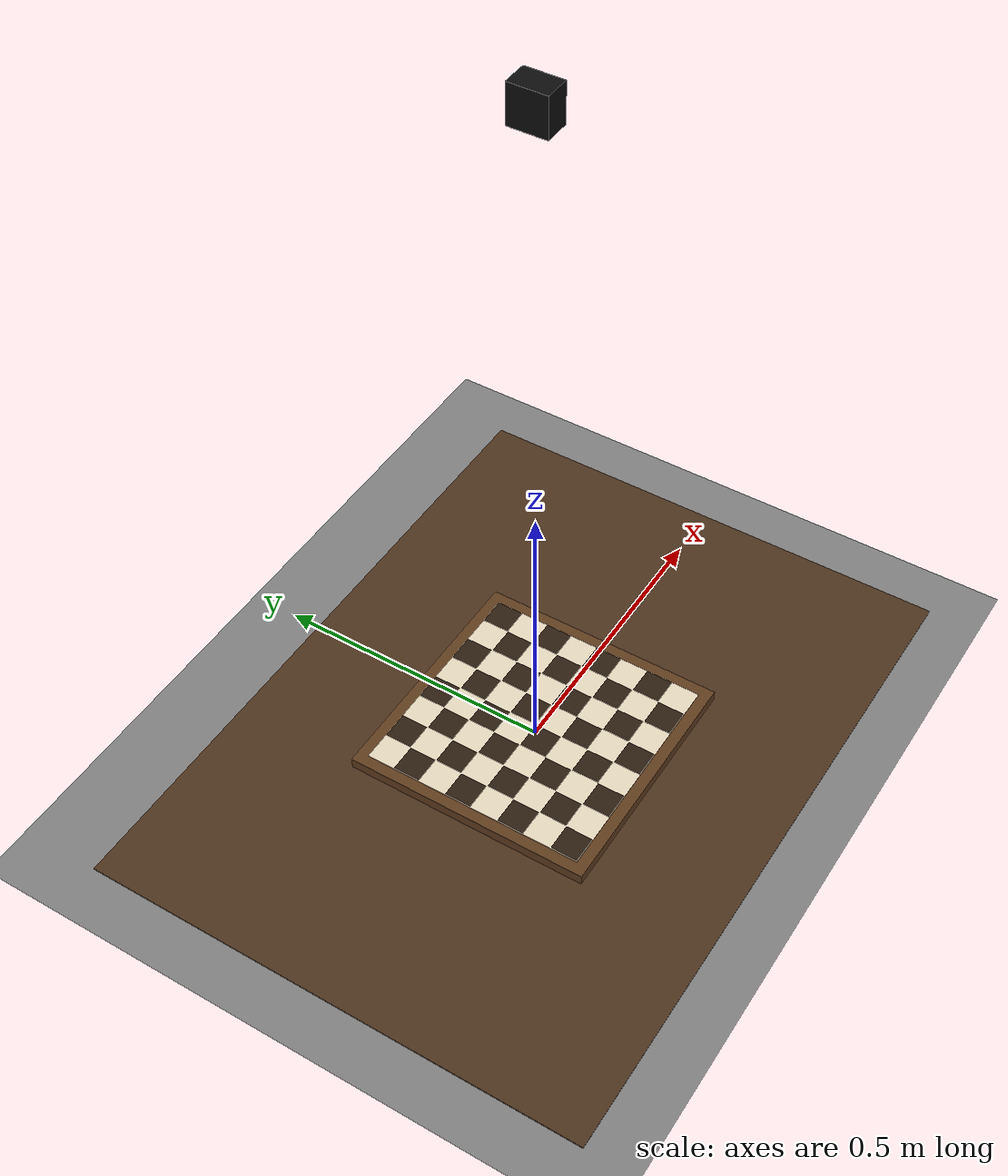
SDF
<?xml version="1.0" ?>
<sdf version="1.9">
  <world name="chess_world">

    <plugin filename="gz-sim-physics-system"          name="gz::sim::systems::Physics"/>
    <plugin filename="gz-sim-user-commands-system"    name="gz::sim::systems::UserCommands"/>
    <plugin filename="gz-sim-scene-broadcaster-system" name="gz::sim::systems::SceneBroadcaster"/>
    <plugin filename="gz-sim-sensors-system"          name="gz::sim::systems::Sensors">
      <render_engine>ogre2</render_engine>
    </plugin>
    <plugin filename="gz-sim-detachable-joint-system" name="gz::sim::systems::DetachableJoint">
    </plugin>

    <gravity>0 0 -9.81</gravity>

    <scene>
      <ambient>0.5 0.5 0.5 1</ambient>
      <background>0.7 0.7 0.7 1</background>
      <shadows>true</shadows>
    </scene>

    <light name="sun" type="directional">
      <pose>0 0 10 0 0 0</pose>
      <diffuse>0.9 0.9 0.9 1</diffuse>
      <specular>0.2 0.2 0.2 1</specular>
      <direction>-0.3 0.2 -0.9</direction>
      <cast_shadows>true</cast_shadows>
    </light>

    <model name="ground_plane">
      <static>true</static>
      <link name="link">
        <collision name="collision">
          <geometry><plane><normal>0 0 1</normal><size>10 10</size></plane></geometry>
        </collision>
        <visual name="visual">
          <geometry><plane><normal>0 0 1</normal><size>10 10</size></plane></geometry>
          <material>
            <ambient>0.3 0.3 0.3 1</ambient>
            <diffuse>0.5 0.5 0.5 1</diffuse>
          </material>
        </visual>
      </link>
    </model>

    <!-- Table: 1.0 m x 0.8 m x 0.02 m surface at z=0 (level with robot bases). -->
    <model name="chess_table">
      <static>true</static>
      <pose>0 0 -0.01 0 0 0</pose>
      <link name="surface">
        <collision name="col">
          <geometry><box><size>1.2 0.9 0.02</size></box></geometry>
        </collision>
        <visual name="vis">
          <geometry><box><size>1.2 0.9 0.02</size></box></geometry>
          <material>
            <ambient>0.20 0.13 0.08 1</ambient>
            <diffuse>0.30 0.20 0.12 1</diffuse>
          </material>
        </visual>
      </link>
    </model>

    <model name="chess_board">
      <static>true</static>
      <pose>0 0 0 0 0 0</pose>
      <link name="board">
        <!-- Wooden surround -->
        <visual name="border">
          <pose>0 0 0.01 0 0 0</pose>
          <geometry><box><size>0.44 0.44 0.02</size></box></geometry>
          <material>
            <ambient>0.28 0.17 0.08 1</ambient>
            <diffuse>0.38 0.24 0.12 1</diffuse>
          </material>
        </visual>
        <!-- Light-square background (full playing area) -->
        <visual name="light_bg">
          <pose>0 0 0.0205 0 0 0</pose>
          <geometry><box><size>0.400 0.400 0.001</size></box></geometry>
          <material>
            <ambient>0.90 0.85 0.75 1</ambient>
            <diffuse>0.90 0.85 0.75 1</diffuse>
          </material>
        </visual>
        <!-- 32 dark tiles: (i+j)%2==0, i/j in 0..7, pos=(i-3.5)*0.05 -->
        <visual name="d00"><pose>-0.175 -0.175 0.0215 0 0 0</pose><geometry><box><size>0.048 0.048 0.001</size></box></geometry><material><ambient>0.18 0.12 0.07 1</ambient><diffuse>0.18 0.12 0.07 1</diffuse></material></visual>
        <visual name="d02"><pose>-0.175 -0.075 0.0215 0 0 0</pose><geometry><box><size>0.048 0.048 0.001</size></box></geometry><material><ambient>0.18 0.12 0.07 1</ambient><diffuse>0.18 0.12 0.07 1</diffuse></material></visual>
        <visual name="d04"><pose>-0.175  0.025 0.0215 0 0 0</pose><geometry><box><size>0.048 0.048 0.001</size></box></geometry><material><ambient>0.18 0.12 0.07 1</ambient><diffuse>0.18 0.12 0.07 1</diffuse></material></visual>
        <visual name="d06"><pose>-0.175  0.125 0.0215 0 0 0</pose><geometry><box><size>0.048 0.048 0.001</size></box></geometry><material><ambient>0.18 0.12 0.07 1</ambient><diffuse>0.18 0.12 0.07 1</diffuse></material></visual>
        <visual name="d11"><pose>-0.125 -0.125 0.0215 0 0 0</pose><geometry><box><size>0.048 0.048 0.001</size></box></geometry><material><ambient>0.18 0.12 0.07 1</ambient><diffuse>0.18 0.12 0.07 1</diffuse></material></visual>
        <visual name="d13"><pose>-0.125 -0.025 0.0215 0 0 0</pose><geometry><box><size>0.048 0.048 0.001</size></box></geometry><material><ambient>0.18 0.12 0.07 1</ambient><diffuse>0.18 0.12 0.07 1</diffuse></material></visual>
        <visual name="d15"><pose>-0.125  0.075 0.0215 0 0 0</pose><geometry><box><size>0.048 0.048 0.001</size></box></geometry><material><ambient>0.18 0.12 0.07 1</ambient><diffuse>0.18 0.12 0.07 1</diffuse></material></visual>
        <visual name="d17"><pose>-0.125  0.175 0.0215 0 0 0</pose><geometry><box><size>0.048 0.048 0.001</size></box></geometry><material><ambient>0.18 0.12 0.07 1</ambient><diffuse>0.18 0.12 0.07 1</diffuse></material></visual>
        <visual name="d20"><pose>-0.075 -0.175 0.0215 0 0 0</pose><geometry><box><size>0.048 0.048 0.001</size></box></geometry><material><ambient>0.18 0.12 0.07 1</ambient><diffuse>0.18 0.12 0.07 1</diffuse></material></visual>
        <visual name="d22"><pose>-0.075 -0.075 0.0215 0 0 0</pose><geometry><box><size>0.048 0.048 0.001</size></box></geometry><material><ambient>0.18 0.12 0.07 1</ambient><diffuse>0.18 0.12 0.07 1</diffuse></material></visual>
        <visual name="d24"><pose>-0.075  0.025 0.0215 0 0 0</pose><geometry><box><size>0.048 0.048 0.001</size></box></geometry><material><ambient>0.18 0.12 0.07 1</ambient><diffuse>0.18 0.12 0.07 1</diffuse></material></visual>
        <visual name="d26"><pose>-0.075  0.125 0.0215 0 0 0</pose><geometry><box><size>0.048 0.048 0.001</size></box></geometry><material><ambient>0.18 0.12 0.07 1</ambient><diffuse>0.18 0.12 0.07 1</diffuse></material></visual>
        <visual name="d31"><pose>-0.025 -0.125 0.0215 0 0 0</pose><geometry><box><size>0.048 0.048 0.001</size></box></geometry><material><ambient>0.18 0.12 0.07 1</ambient><diffuse>0.18 0.12 0.07 1</diffuse></material></visual>
        <visual name="d33"><pose>-0.025 -0.025 0.0215 0 0 0</pose><geometry><box><size>0.048 0.048 0.001</size></box></geometry><material><ambient>0.18 0.12 0.07 1</ambient><diffuse>0.18 0.12 0.07 1</diffuse></material></visual>
        <visual name="d35"><pose>-0.025  0.075 0.0215 0 0 0</pose><geometry><box><size>0.048 0.048 0.001</size></box></geometry><material><ambient>0.18 0.12 0.07 1</ambient><diffuse>0.18 0.12 0.07 1</diffuse></material></visual>
        <visual name="d37"><pose>-0.025  0.175 0.0215 0 0 0</pose><geometry><box><size>0.048 0.048 0.001</size></box></geometry><material><ambient>0.18 0.12 0.07 1</ambient><diffuse>0.18 0.12 0.07 1</diffuse></material></visual>
        <visual name="d40"><pose> 0.025 -0.175 0.0215 0 0 0</pose><geometry><box><size>0.048 0.048 0.001</size></box></geometry><material><ambient>0.18 0.12 0.07 1</ambient><diffuse>0.18 0.12 0.07 1</diffuse></material></visual>
        <visual name="d42"><pose> 0.025 -0.075 0.0215 0 0 0</pose><geometry><box><size>0.048 0.048 0.001</size></box></geometry><material><ambient>0.18 0.12 0.07 1</ambient><diffuse>0.18 0.12 0.07 1</diffuse></material></visual>
        <visual name="d44"><pose> 0.025  0.025 0.0215 0 0 0</pose><geometry><box><size>0.048 0.048 0.001</size></box></geometry><material><ambient>0.18 0.12 0.07 1</ambient><diffuse>0.18 0.12 0.07 1</diffuse></material></visual>
        <visual name="d46"><pose> 0.025  0.125 0.0215 0 0 0</pose><geometry><box><size>0.048 0.048 0.001</size></box></geometry><material><ambient>0.18 0.12 0.07 1</ambient><diffuse>0.18 0.12 0.07 1</diffuse></material></visual>
        <visual name="d51"><pose> 0.075 -0.125 0.0215 0 0 0</pose><geometry><box><size>0.048 0.048 0.001</size></box></geometry><material><ambient>0.18 0.12 0.07 1</ambient><diffuse>0.18 0.12 0.07 1</diffuse></material></visual>
        <visual name="d53"><pose> 0.075 -0.025 0.0215 0 0 0</pose><geometry><box><size>0.048 0.048 0.001</size></box></geometry><material><ambient>0.18 0.12 0.07 1</ambient><diffuse>0.18 0.12 0.07 1</diffuse></material></visual>
        <visual name="d55"><pose> 0.075  0.075 0.0215 0 0 0</pose><geometry><box><size>0.048 0.048 0.001</size></box></geometry><material><ambient>0.18 0.12 0.07 1</ambient><diffuse>0.18 0.12 0.07 1</diffuse></material></visual>
        <visual name="d57"><pose> 0.075  0.175 0.0215 0 0 0</pose><geometry><box><size>0.048 0.048 0.001</size></box></geometry><material><ambient>0.18 0.12 0.07 1</ambient><diffuse>0.18 0.12 0.07 1</diffuse></material></visual>
        <visual name="d60"><pose> 0.125 -0.175 0.0215 0 0 0</pose><geometry><box><size>0.048 0.048 0.001</size></box></geometry><material><ambient>0.18 0.12 0.07 1</ambient><diffuse>0.18 0.12 0.07 1</diffuse></material></visual>
        <visual name="d62"><pose> 0.125 -0.075 0.0215 0 0 0</pose><geometry><box><size>0.048 0.048 0.001</size></box></geometry><material><ambient>0.18 0.12 0.07 1</ambient><diffuse>0.18 0.12 0.07 1</diffuse></material></visual>
        <visual name="d64"><pose> 0.125  0.025 0.0215 0 0 0</pose><geometry><box><size>0.048 0.048 0.001</size></box></geometry><material><ambient>0.18 0.12 0.07 1</ambient><diffuse>0.18 0.12 0.07 1</diffuse></material></visual>
        <visual name="d66"><pose> 0.125  0.125 0.0215 0 0 0</pose><geometry><box><size>0.048 0.048 0.001</size></box></geometry><material><ambient>0.18 0.12 0.07 1</ambient><diffuse>0.18 0.12 0.07 1</diffuse></material></visual>
        <visual name="d71"><pose> 0.175 -0.125 0.0215 0 0 0</pose><geometry><box><size>0.048 0.048 0.001</size></box></geometry><material><ambient>0.18 0.12 0.07 1</ambient><diffuse>0.18 0.12 0.07 1</diffuse></material></visual>
        <visual name="d73"><pose> 0.175 -0.025 0.0215 0 0 0</pose><geometry><box><size>0.048 0.048 0.001</size></box></geometry><material><ambient>0.18 0.12 0.07 1</ambient><diffuse>0.18 0.12 0.07 1</diffuse></material></visual>
        <visual name="d75"><pose> 0.175  0.075 0.0215 0 0 0</pose><geometry><box><size>0.048 0.048 0.001</size></box></geometry><material><ambient>0.18 0.12 0.07 1</ambient><diffuse>0.18 0.12 0.07 1</diffuse></material></visual>
        <visual name="d77"><pose> 0.175  0.175 0.0215 0 0 0</pose><geometry><box><size>0.048 0.048 0.001</size></box></geometry><material><ambient>0.18 0.12 0.07 1</ambient><diffuse>0.18 0.12 0.07 1</diffuse></material></visual>
        <!-- Collision for the whole board surface -->
        <collision name="col">
          <pose>0 0 0.01 0 0 0</pose>
          <geometry><box><size>0.44 0.44 0.02</size></box></geometry>
        </collision>
      </link>
    </model>

    <!-- Overhead RGB camera looking straight down at the board centre (0,0,0). -->
    <model name="overhead_camera">
      <static>true</static>
      <pose>0 0 1.2 0 1.5708 0</pose>
      <link name="link">
        <sensor name="rgb" type="camera">
          <pose>0 0 0 0 0 0</pose>
          <topic>overhead_camera/image</topic>
          <update_rate>15</update_rate>
          <always_on>true</always_on>
          <visualize>false</visualize>
          <camera>
            <horizontal_fov>1.2</horizontal_fov>
            <image>
              <width>1280</width>
              <height>720</height>
              <format>R8G8B8</format>
            </image>
            <clip><near>0.05</near><far>4.0</far></clip>
          </camera>
        </sensor>
        <visual name="case">
          <geometry><box><size>0.06 0.06 0.04</size></box></geometry>
          <material>
            <ambient>0.05 0.05 0.05 1</ambient>
            <diffuse>0.05 0.05 0.05 1</diffuse>
          </material>
        </visual>
      </link>
    </model>

  </world>
</sdf>
